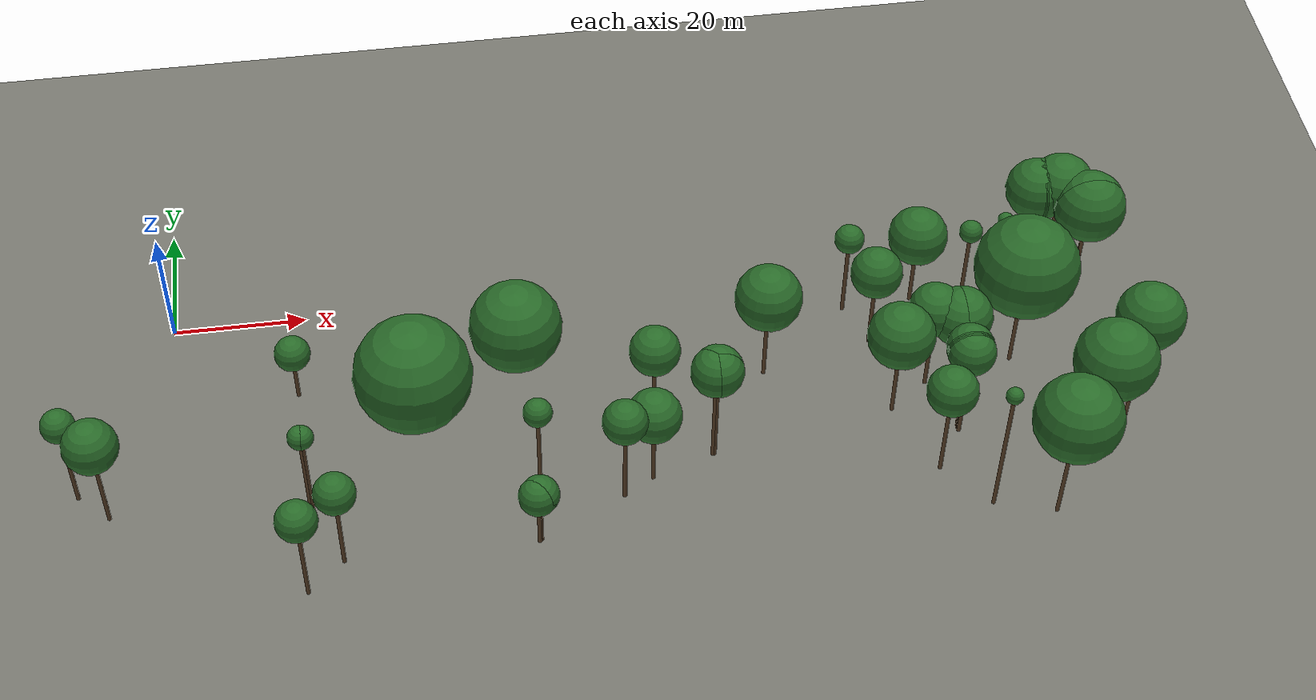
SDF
<sdf version="1.9">
 <world name="uav_arena_bk">
  <model name="ground_plane">
   <static>true</static>
   <link name="link">
    <collision name="collision">
     <geometry><plane><normal>0 0 1</normal><size>1200 1200</size></plane></geometry>
    </collision>
    <visual name="visual">
     <geometry><plane><normal>0 0 1</normal><size>1200 1200</size></plane></geometry>
     <material><ambient>0.35 0.35 0.33 1</ambient><diffuse>0.45 0.45 0.42 1</diffuse></material>
    </visual>
   </link>
  </model>
  <model name="tree_139">
   <static>true</static>
   <pose>133.090 -1.088 0 0 0 0</pose>
   <link name="link">
    <collision name="trunk_collision">
     <pose>0 0 4.930 0 0 0</pose>
     <geometry><cylinder><radius>0.30</radius><length>9.860</length></cylinder></geometry>
    </collision>
    <visual name="trunk_visual">
     <pose>0 0 4.930 0 0 0</pose>
     <geometry><cylinder><radius>0.30</radius><length>9.860</length></cylinder></geometry>
     <material><ambient>0.25 0.18 0.11 1</ambient><diffuse>0.35 0.25 0.15 1</diffuse></material>
    </visual>
    <collision name="canopy_collision">
     <pose>0 0 14.610 0 0 0</pose>
     <geometry><sphere><radius>4.750</radius></sphere></geometry>
    </collision>
    <visual name="canopy_visual">
     <pose>0 0 14.610 0 0 0</pose>
     <geometry><sphere><radius>4.750</radius></sphere></geometry>
     <material><ambient>0.10 0.28 0.10 1</ambient><diffuse>0.16 0.42 0.16 1</diffuse></material>
     <plugin filename="gz-sim-label-system" name="gz::sim::systems::Label"><label>2</label></plugin>
    </visual>
   </link>
  </model>
  <model name="tree_140">
   <static>true</static>
   <pose>133.340 -1.089 0 0 0 0</pose>
   <link name="link">
    <collision name="trunk_collision">
     <pose>0 0 4.915 0 0 0</pose>
     <geometry><cylinder><radius>0.30</radius><length>9.830</length></cylinder></geometry>
    </collision>
    <visual name="trunk_visual">
     <pose>0 0 4.915 0 0 0</pose>
     <geometry><cylinder><radius>0.30</radius><length>9.830</length></cylinder></geometry>
     <material><ambient>0.25 0.18 0.11 1</ambient><diffuse>0.35 0.25 0.15 1</diffuse></material>
    </visual>
    <collision name="canopy_collision">
     <pose>0 0 14.580 0 0 0</pose>
     <geometry><sphere><radius>4.750</radius></sphere></geometry>
    </collision>
    <visual name="canopy_visual">
     <pose>0 0 14.580 0 0 0</pose>
     <geometry><sphere><radius>4.750</radius></sphere></geometry>
     <material><ambient>0.10 0.28 0.10 1</ambient><diffuse>0.16 0.42 0.16 1</diffuse></material>
     <plugin filename="gz-sim-label-system" name="gz::sim::systems::Label"><label>2</label></plugin>
    </visual>
   </link>
  </model>
  <model name="tree_141">
   <static>true</static>
   <pose>133.590 -1.091 0 0 0 0</pose>
   <link name="link">
    <collision name="trunk_collision">
     <pose>0 0 4.905 0 0 0</pose>
     <geometry><cylinder><radius>0.30</radius><length>9.810</length></cylinder></geometry>
    </collision>
    <visual name="trunk_visual">
     <pose>0 0 4.905 0 0 0</pose>
     <geometry><cylinder><radius>0.30</radius><length>9.810</length></cylinder></geometry>
     <material><ambient>0.25 0.18 0.11 1</ambient><diffuse>0.35 0.25 0.15 1</diffuse></material>
    </visual>
    <collision name="canopy_collision">
     <pose>0 0 14.560 0 0 0</pose>
     <geometry><sphere><radius>4.750</radius></sphere></geometry>
    </collision>
    <visual name="canopy_visual">
     <pose>0 0 14.560 0 0 0</pose>
     <geometry><sphere><radius>4.750</radius></sphere></geometry>
     <material><ambient>0.10 0.28 0.10 1</ambient><diffuse>0.16 0.42 0.16 1</diffuse></material>
     <plugin filename="gz-sim-label-system" name="gz::sim::systems::Label"><label>2</label></plugin>
    </visual>
   </link>
  </model>
  <model name="tree_142">
   <static>true</static>
   <pose>133.840 -1.092 0 0 0 0</pose>
   <link name="link">
    <collision name="trunk_collision">
     <pose>0 0 4.900 0 0 0</pose>
     <geometry><cylinder><radius>0.30</radius><length>9.800</length></cylinder></geometry>
    </collision>
    <visual name="trunk_visual">
     <pose>0 0 4.900 0 0 0</pose>
     <geometry><cylinder><radius>0.30</radius><length>9.800</length></cylinder></geometry>
     <material><ambient>0.25 0.18 0.11 1</ambient><diffuse>0.35 0.25 0.15 1</diffuse></material>
    </visual>
    <collision name="canopy_collision">
     <pose>0 0 14.550 0 0 0</pose>
     <geometry><sphere><radius>4.750</radius></sphere></geometry>
    </collision>
    <visual name="canopy_visual">
     <pose>0 0 14.550 0 0 0</pose>
     <geometry><sphere><radius>4.750</radius></sphere></geometry>
     <material><ambient>0.10 0.28 0.10 1</ambient><diffuse>0.16 0.42 0.16 1</diffuse></material>
     <plugin filename="gz-sim-label-system" name="gz::sim::systems::Label"><label>2</label></plugin>
    </visual>
   </link>
  </model>
  <model name="tree_144">
   <static>true</static>
   <pose>136.839 -1.358 0 0 0 0</pose>
   <link name="link">
    <collision name="trunk_collision">
     <pose>0 0 5.085 0 0 0</pose>
     <geometry><cylinder><radius>0.30</radius><length>10.170</length></cylinder></geometry>
    </collision>
    <visual name="trunk_visual">
     <pose>0 0 5.085 0 0 0</pose>
     <geometry><cylinder><radius>0.30</radius><length>10.170</length></cylinder></geometry>
     <material><ambient>0.25 0.18 0.11 1</ambient><diffuse>0.35 0.25 0.15 1</diffuse></material>
    </visual>
    <collision name="canopy_collision">
     <pose>0 0 15.170 0 0 0</pose>
     <geometry><sphere><radius>5.000</radius></sphere></geometry>
    </collision>
    <visual name="canopy_visual">
     <pose>0 0 15.170 0 0 0</pose>
     <geometry><sphere><radius>5.000</radius></sphere></geometry>
     <material><ambient>0.10 0.28 0.10 1</ambient><diffuse>0.16 0.42 0.16 1</diffuse></material>
     <plugin filename="gz-sim-label-system" name="gz::sim::systems::Label"><label>2</label></plugin>
    </visual>
   </link>
  </model>
  <model name="tree_146">
   <static>true</static>
   <pose>140.064 -5.876 0 0 0 0</pose>
   <link name="link">
    <collision name="trunk_collision">
     <pose>0 0 4.670 0 0 0</pose>
     <geometry><cylinder><radius>0.30</radius><length>9.340</length></cylinder></geometry>
    </collision>
    <visual name="trunk_visual">
     <pose>0 0 4.670 0 0 0</pose>
     <geometry><cylinder><radius>0.30</radius><length>9.340</length></cylinder></geometry>
     <material><ambient>0.25 0.18 0.11 1</ambient><diffuse>0.35 0.25 0.15 1</diffuse></material>
    </visual>
    <collision name="canopy_collision">
     <pose>0 0 14.840 0 0 0</pose>
     <geometry><sphere><radius>5.500</radius></sphere></geometry>
    </collision>
    <visual name="canopy_visual">
     <pose>0 0 14.840 0 0 0</pose>
     <geometry><sphere><radius>5.500</radius></sphere></geometry>
     <material><ambient>0.10 0.28 0.10 1</ambient><diffuse>0.16 0.42 0.16 1</diffuse></material>
     <plugin filename="gz-sim-label-system" name="gz::sim::systems::Label"><label>2</label></plugin>
    </visual>
   </link>
  </model>
  <model name="tree_147">
   <static>true</static>
   <pose>140.063 -6.126 0 0 0 0</pose>
   <link name="link">
    <collision name="trunk_collision">
     <pose>0 0 4.670 0 0 0</pose>
     <geometry><cylinder><radius>0.30</radius><length>9.340</length></cylinder></geometry>
    </collision>
    <visual name="trunk_visual">
     <pose>0 0 4.670 0 0 0</pose>
     <geometry><cylinder><radius>0.30</radius><length>9.340</length></cylinder></geometry>
     <material><ambient>0.25 0.18 0.11 1</ambient><diffuse>0.35 0.25 0.15 1</diffuse></material>
    </visual>
    <collision name="canopy_collision">
     <pose>0 0 14.840 0 0 0</pose>
     <geometry><sphere><radius>5.500</radius></sphere></geometry>
    </collision>
    <visual name="canopy_visual">
     <pose>0 0 14.840 0 0 0</pose>
     <geometry><sphere><radius>5.500</radius></sphere></geometry>
     <material><ambient>0.10 0.28 0.10 1</ambient><diffuse>0.16 0.42 0.16 1</diffuse></material>
     <plugin filename="gz-sim-label-system" name="gz::sim::systems::Label"><label>2</label></plugin>
    </visual>
   </link>
  </model>
  <model name="tree_148">
   <static>true</static>
   <pose>113.053 -7.979 0 0 0 0</pose>
   <link name="link">
    <collision name="trunk_collision">
     <pose>0 0 4.770 0 0 0</pose>
     <geometry><cylinder><radius>0.30</radius><length>9.540</length></cylinder></geometry>
    </collision>
    <visual name="trunk_visual">
     <pose>0 0 4.770 0 0 0</pose>
     <geometry><cylinder><radius>0.30</radius><length>9.540</length></cylinder></geometry>
     <material><ambient>0.25 0.18 0.11 1</ambient><diffuse>0.35 0.25 0.15 1</diffuse></material>
    </visual>
    <collision name="canopy_collision">
     <pose>0 0 14.050 0 0 0</pose>
     <geometry><sphere><radius>4.510</radius></sphere></geometry>
    </collision>
    <visual name="canopy_visual">
     <pose>0 0 14.050 0 0 0</pose>
     <geometry><sphere><radius>4.510</radius></sphere></geometry>
     <material><ambient>0.10 0.28 0.10 1</ambient><diffuse>0.16 0.42 0.16 1</diffuse></material>
     <plugin filename="gz-sim-label-system" name="gz::sim::systems::Label"><label>2</label></plugin>
    </visual>
   </link>
  </model>
  <model name="tree_149">
   <static>true</static>
   <pose>102.299 -8.671 0 0 0 0</pose>
   <link name="link">
    <collision name="trunk_collision">
     <pose>0 0 6.655 0 0 0</pose>
     <geometry><cylinder><radius>0.30</radius><length>13.310</length></cylinder></geometry>
    </collision>
    <visual name="trunk_visual">
     <pose>0 0 6.655 0 0 0</pose>
     <geometry><cylinder><radius>0.30</radius><length>13.310</length></cylinder></geometry>
     <material><ambient>0.25 0.18 0.11 1</ambient><diffuse>0.35 0.25 0.15 1</diffuse></material>
    </visual>
    <collision name="canopy_collision">
     <pose>0 0 15.560 0 0 0</pose>
     <geometry><sphere><radius>2.250</radius></sphere></geometry>
    </collision>
    <visual name="canopy_visual">
     <pose>0 0 15.560 0 0 0</pose>
     <geometry><sphere><radius>2.250</radius></sphere></geometry>
     <material><ambient>0.10 0.28 0.10 1</ambient><diffuse>0.16 0.42 0.16 1</diffuse></material>
     <plugin filename="gz-sim-label-system" name="gz::sim::systems::Label"><label>2</label></plugin>
    </visual>
   </link>
  </model>
  <model name="tree_150">
   <static>true</static>
   <pose>126.047 -9.050 0 0 0 0</pose>
   <link name="link">
    <collision name="trunk_collision">
     <pose>0 0 7.720 0 0 0</pose>
     <geometry><cylinder><radius>0.30</radius><length>15.440</length></cylinder></geometry>
    </collision>
    <visual name="trunk_visual">
     <pose>0 0 7.720 0 0 0</pose>
     <geometry><cylinder><radius>0.30</radius><length>15.440</length></cylinder></geometry>
     <material><ambient>0.25 0.18 0.11 1</ambient><diffuse>0.35 0.25 0.15 1</diffuse></material>
    </visual>
    <collision name="canopy_collision">
     <pose>0 0 16.690 0 0 0</pose>
     <geometry><sphere><radius>1.250</radius></sphere></geometry>
    </collision>
    <visual name="canopy_visual">
     <pose>0 0 16.690 0 0 0</pose>
     <geometry><sphere><radius>1.250</radius></sphere></geometry>
     <material><ambient>0.10 0.28 0.10 1</ambient><diffuse>0.16 0.42 0.16 1</diffuse></material>
     <plugin filename="gz-sim-label-system" name="gz::sim::systems::Label"><label>2</label></plugin>
    </visual>
   </link>
  </model>
  <model name="tree_155">
   <static>true</static>
   <pose>120.542 -10.020 0 0 0 0</pose>
   <link name="link">
    <collision name="trunk_collision">
     <pose>0 0 7.150 0 0 0</pose>
     <geometry><cylinder><radius>0.30</radius><length>14.300</length></cylinder></geometry>
    </collision>
    <visual name="trunk_visual">
     <pose>0 0 7.150 0 0 0</pose>
     <geometry><cylinder><radius>0.30</radius><length>14.300</length></cylinder></geometry>
     <material><ambient>0.25 0.18 0.11 1</ambient><diffuse>0.35 0.25 0.15 1</diffuse></material>
    </visual>
    <collision name="canopy_collision">
     <pose>0 0 16.050 0 0 0</pose>
     <geometry><sphere><radius>1.750</radius></sphere></geometry>
    </collision>
    <visual name="canopy_visual">
     <pose>0 0 16.050 0 0 0</pose>
     <geometry><sphere><radius>1.750</radius></sphere></geometry>
     <material><ambient>0.10 0.28 0.10 1</ambient><diffuse>0.16 0.42 0.16 1</diffuse></material>
     <plugin filename="gz-sim-label-system" name="gz::sim::systems::Label"><label>2</label></plugin>
    </visual>
   </link>
  </model>
  <model name="tree_159">
   <static>true</static>
   <pose>51.269 -14.145 0 0 0 0</pose>
   <link name="link">
    <collision name="trunk_collision">
     <pose>0 0 1.340 0 0 0</pose>
     <geometry><cylinder><radius>0.30</radius><length>2.680</length></cylinder></geometry>
    </collision>
    <visual name="trunk_visual">
     <pose>0 0 1.340 0 0 0</pose>
     <geometry><cylinder><radius>0.30</radius><length>2.680</length></cylinder></geometry>
     <material><ambient>0.25 0.18 0.11 1</ambient><diffuse>0.35 0.25 0.15 1</diffuse></material>
    </visual>
    <collision name="canopy_collision">
     <pose>0 0 9.680 0 0 0</pose>
     <geometry><sphere><radius>7.000</radius></sphere></geometry>
    </collision>
    <visual name="canopy_visual">
     <pose>0 0 9.680 0 0 0</pose>
     <geometry><sphere><radius>7.000</radius></sphere></geometry>
     <material><ambient>0.10 0.28 0.10 1</ambient><diffuse>0.16 0.42 0.16 1</diffuse></material>
     <plugin filename="gz-sim-label-system" name="gz::sim::systems::Label"><label>2</label></plugin>
    </visual>
   </link>
  </model>
  <model name="tree_160">
   <static>true</static>
   <pose>18.264 -14.966 0 0 0 0</pose>
   <link name="link">
    <collision name="trunk_collision">
     <pose>0 0 3.405 0 0 0</pose>
     <geometry><cylinder><radius>0.30</radius><length>6.810</length></cylinder></geometry>
    </collision>
    <visual name="trunk_visual">
     <pose>0 0 3.405 0 0 0</pose>
     <geometry><cylinder><radius>0.30</radius><length>6.810</length></cylinder></geometry>
     <material><ambient>0.25 0.18 0.11 1</ambient><diffuse>0.35 0.25 0.15 1</diffuse></material>
    </visual>
    <collision name="canopy_collision">
     <pose>0 0 9.500 0 0 0</pose>
     <geometry><sphere><radius>2.690</radius></sphere></geometry>
    </collision>
    <visual name="canopy_visual">
     <pose>0 0 9.500 0 0 0</pose>
     <geometry><sphere><radius>2.690</radius></sphere></geometry>
     <material><ambient>0.10 0.28 0.10 1</ambient><diffuse>0.16 0.42 0.16 1</diffuse></material>
     <plugin filename="gz-sim-label-system" name="gz::sim::systems::Label"><label>2</label></plugin>
    </visual>
   </link>
  </model>
  <model name="tree_161">
   <static>true</static>
   <pose>105.011 -15.686 0 0 0 0</pose>
   <link name="link">
    <collision name="trunk_collision">
     <pose>0 0 5.695 0 0 0</pose>
     <geometry><cylinder><radius>0.30</radius><length>11.390</length></cylinder></geometry>
    </collision>
    <visual name="trunk_visual">
     <pose>0 0 5.695 0 0 0</pose>
     <geometry><cylinder><radius>0.30</radius><length>11.390</length></cylinder></geometry>
     <material><ambient>0.25 0.18 0.11 1</ambient><diffuse>0.35 0.25 0.15 1</diffuse></material>
    </visual>
    <collision name="canopy_collision">
     <pose>0 0 15.300 0 0 0</pose>
     <geometry><sphere><radius>3.910</radius></sphere></geometry>
    </collision>
    <visual name="canopy_visual">
     <pose>0 0 15.300 0 0 0</pose>
     <geometry><sphere><radius>3.910</radius></sphere></geometry>
     <material><ambient>0.10 0.28 0.10 1</ambient><diffuse>0.16 0.42 0.16 1</diffuse></material>
     <plugin filename="gz-sim-label-system" name="gz::sim::systems::Label"><label>2</label></plugin>
    </visual>
   </link>
  </model>
  <model name="tree_171">
   <static>true</static>
   <pose>87.988 -19.844 0 0 0 0</pose>
   <link name="link">
    <collision name="trunk_collision">
     <pose>0 0 5.880 0 0 0</pose>
     <geometry><cylinder><radius>0.30</radius><length>11.760</length></cylinder></geometry>
    </collision>
    <visual name="trunk_visual">
     <pose>0 0 5.880 0 0 0</pose>
     <geometry><cylinder><radius>0.30</radius><length>11.760</length></cylinder></geometry>
     <material><ambient>0.25 0.18 0.11 1</ambient><diffuse>0.35 0.25 0.15 1</diffuse></material>
    </visual>
    <collision name="canopy_collision">
     <pose>0 0 16.780 0 0 0</pose>
     <geometry><sphere><radius>5.020</radius></sphere></geometry>
    </collision>
    <visual name="canopy_visual">
     <pose>0 0 16.780 0 0 0</pose>
     <geometry><sphere><radius>5.020</radius></sphere></geometry>
     <material><ambient>0.10 0.28 0.10 1</ambient><diffuse>0.16 0.42 0.16 1</diffuse></material>
     <plugin filename="gz-sim-label-system" name="gz::sim::systems::Label"><label>2</label></plugin>
    </visual>
   </link>
  </model>
  <model name="tree_172">
   <static>true</static>
   <pose>35.479 -21.559 0 0 0 0</pose>
   <link name="link">
    <collision name="trunk_collision">
     <pose>0 0 0.500 0 0 0</pose>
     <geometry><cylinder><radius>0.30</radius><length>1.000</length></cylinder></geometry>
    </collision>
    <visual name="trunk_visual">
     <pose>0 0 0.500 0 0 0</pose>
     <geometry><cylinder><radius>0.30</radius><length>1.000</length></cylinder></geometry>
     <material><ambient>0.25 0.18 0.11 1</ambient><diffuse>0.35 0.25 0.15 1</diffuse></material>
    </visual>
    <collision name="canopy_collision">
     <pose>0 0 9.860 0 0 0</pose>
     <geometry><sphere><radius>8.860</radius></sphere></geometry>
    </collision>
    <visual name="canopy_visual">
     <pose>0 0 9.860 0 0 0</pose>
     <geometry><sphere><radius>8.860</radius></sphere></geometry>
     <material><ambient>0.10 0.28 0.10 1</ambient><diffuse>0.16 0.42 0.16 1</diffuse></material>
     <plugin filename="gz-sim-label-system" name="gz::sim::systems::Label"><label>2</label></plugin>
    </visual>
   </link>
  </model>
  <model name="tree_173">
   <static>true</static>
   <pose>125.477 -22.047 0 0 0 0</pose>
   <link name="link">
    <collision name="trunk_collision">
     <pose>0 0 6.335 0 0 0</pose>
     <geometry><cylinder><radius>0.30</radius><length>12.670</length></cylinder></geometry>
    </collision>
    <visual name="trunk_visual">
     <pose>0 0 6.335 0 0 0</pose>
     <geometry><cylinder><radius>0.30</radius><length>12.670</length></cylinder></geometry>
     <material><ambient>0.25 0.18 0.11 1</ambient><diffuse>0.35 0.25 0.15 1</diffuse></material>
    </visual>
    <collision name="canopy_collision">
     <pose>0 0 20.430 0 0 0</pose>
     <geometry><sphere><radius>7.760</radius></sphere></geometry>
    </collision>
    <visual name="canopy_visual">
     <pose>0 0 20.430 0 0 0</pose>
     <geometry><sphere><radius>7.760</radius></sphere></geometry>
     <material><ambient>0.10 0.28 0.10 1</ambient><diffuse>0.16 0.42 0.16 1</diffuse></material>
     <plugin filename="gz-sim-label-system" name="gz::sim::systems::Label"><label>2</label></plugin>
    </visual>
   </link>
  </model>
  <model name="tree_174">
   <static>true</static>
   <pose>111.711 -24.972 0 0 0 0</pose>
   <link name="link">
    <collision name="trunk_collision">
     <pose>0 0 6.185 0 0 0</pose>
     <geometry><cylinder><radius>0.30</radius><length>12.370</length></cylinder></geometry>
    </collision>
    <visual name="trunk_visual">
     <pose>0 0 6.185 0 0 0</pose>
     <geometry><cylinder><radius>0.30</radius><length>12.370</length></cylinder></geometry>
     <material><ambient>0.25 0.18 0.11 1</ambient><diffuse>0.35 0.25 0.15 1</diffuse></material>
    </visual>
    <collision name="canopy_collision">
     <pose>0 0 16.400 0 0 0</pose>
     <geometry><sphere><radius>4.030</radius></sphere></geometry>
    </collision>
    <visual name="canopy_visual">
     <pose>0 0 16.400 0 0 0</pose>
     <geometry><sphere><radius>4.030</radius></sphere></geometry>
     <material><ambient>0.10 0.28 0.10 1</ambient><diffuse>0.16 0.42 0.16 1</diffuse></material>
     <plugin filename="gz-sim-label-system" name="gz::sim::systems::Label"><label>2</label></plugin>
    </visual>
   </link>
  </model>
  <model name="tree_177">
   <static>true</static>
   <pose>115.204 -26.241 0 0 0 0</pose>
   <link name="link">
    <collision name="trunk_collision">
     <pose>0 0 5.630 0 0 0</pose>
     <geometry><cylinder><radius>0.30</radius><length>11.260</length></cylinder></geometry>
    </collision>
    <visual name="trunk_visual">
     <pose>0 0 5.630 0 0 0</pose>
     <geometry><cylinder><radius>0.30</radius><length>11.260</length></cylinder></geometry>
     <material><ambient>0.25 0.18 0.11 1</ambient><diffuse>0.35 0.25 0.15 1</diffuse></material>
    </visual>
    <collision name="canopy_collision">
     <pose>0 0 15.760 0 0 0</pose>
     <geometry><sphere><radius>4.500</radius></sphere></geometry>
    </collision>
    <visual name="canopy_visual">
     <pose>0 0 15.760 0 0 0</pose>
     <geometry><sphere><radius>4.500</radius></sphere></geometry>
     <material><ambient>0.10 0.28 0.10 1</ambient><diffuse>0.16 0.42 0.16 1</diffuse></material>
     <plugin filename="gz-sim-label-system" name="gz::sim::systems::Label"><label>2</label></plugin>
    </visual>
   </link>
  </model>
  <model name="tree_178">
   <static>true</static>
   <pose>115.454 -26.242 0 0 0 0</pose>
   <link name="link">
    <collision name="trunk_collision">
     <pose>0 0 5.630 0 0 0</pose>
     <geometry><cylinder><radius>0.30</radius><length>11.260</length></cylinder></geometry>
    </collision>
    <visual name="trunk_visual">
     <pose>0 0 5.630 0 0 0</pose>
     <geometry><cylinder><radius>0.30</radius><length>11.260</length></cylinder></geometry>
     <material><ambient>0.25 0.18 0.11 1</ambient><diffuse>0.35 0.25 0.15 1</diffuse></material>
    </visual>
    <collision name="canopy_collision">
     <pose>0 0 15.760 0 0 0</pose>
     <geometry><sphere><radius>4.500</radius></sphere></geometry>
    </collision>
    <visual name="canopy_visual">
     <pose>0 0 15.760 0 0 0</pose>
     <geometry><sphere><radius>4.500</radius></sphere></geometry>
     <material><ambient>0.10 0.28 0.10 1</ambient><diffuse>0.16 0.42 0.16 1</diffuse></material>
     <plugin filename="gz-sim-label-system" name="gz::sim::systems::Label"><label>2</label></plugin>
    </visual>
   </link>
  </model>
  <model name="tree_179">
   <static>true</static>
   <pose>70.200 -26.997 0 0 0 0</pose>
   <link name="link">
    <collision name="trunk_collision">
     <pose>0 0 6.075 0 0 0</pose>
     <geometry><cylinder><radius>0.30</radius><length>12.150</length></cylinder></geometry>
    </collision>
    <visual name="trunk_visual">
     <pose>0 0 6.075 0 0 0</pose>
     <geometry><cylinder><radius>0.30</radius><length>12.150</length></cylinder></geometry>
     <material><ambient>0.25 0.18 0.11 1</ambient><diffuse>0.35 0.25 0.15 1</diffuse></material>
    </visual>
    <collision name="canopy_collision">
     <pose>0 0 15.900 0 0 0</pose>
     <geometry><sphere><radius>3.750</radius></sphere></geometry>
    </collision>
    <visual name="canopy_visual">
     <pose>0 0 15.900 0 0 0</pose>
     <geometry><sphere><radius>3.750</radius></sphere></geometry>
     <material><ambient>0.10 0.28 0.10 1</ambient><diffuse>0.16 0.42 0.16 1</diffuse></material>
     <plugin filename="gz-sim-label-system" name="gz::sim::systems::Label"><label>2</label></plugin>
    </visual>
   </link>
  </model>
  <model name="tree_183">
   <static>true</static>
   <pose>105.687 -29.440 0 0 0 0</pose>
   <link name="link">
    <collision name="trunk_collision">
     <pose>0 0 5.765 0 0 0</pose>
     <geometry><cylinder><radius>0.30</radius><length>11.530</length></cylinder></geometry>
    </collision>
    <visual name="trunk_visual">
     <pose>0 0 5.765 0 0 0</pose>
     <geometry><cylinder><radius>0.30</radius><length>11.530</length></cylinder></geometry>
     <material><ambient>0.25 0.18 0.11 1</ambient><diffuse>0.35 0.25 0.15 1</diffuse></material>
    </visual>
    <collision name="canopy_collision">
     <pose>0 0 16.530 0 0 0</pose>
     <geometry><sphere><radius>5.000</radius></sphere></geometry>
    </collision>
    <visual name="canopy_visual">
     <pose>0 0 16.530 0 0 0</pose>
     <geometry><sphere><radius>5.000</radius></sphere></geometry>
     <material><ambient>0.10 0.28 0.10 1</ambient><diffuse>0.16 0.42 0.16 1</diffuse></material>
     <plugin filename="gz-sim-label-system" name="gz::sim::systems::Label"><label>2</label></plugin>
    </visual>
   </link>
  </model>
  <model name="tree_188">
   <static>true</static>
   <pose>-14.069 -30.291 0 0 0 0</pose>
   <link name="link">
    <collision name="trunk_collision">
     <pose>0 0 7.040 0 0 0</pose>
     <geometry><cylinder><radius>0.30</radius><length>14.080</length></cylinder></geometry>
    </collision>
    <visual name="trunk_visual">
     <pose>0 0 7.040 0 0 0</pose>
     <geometry><cylinder><radius>0.30</radius><length>14.080</length></cylinder></geometry>
     <material><ambient>0.25 0.18 0.11 1</ambient><diffuse>0.35 0.25 0.15 1</diffuse></material>
    </visual>
    <collision name="canopy_collision">
     <pose>0 0 16.580 0 0 0</pose>
     <geometry><sphere><radius>2.500</radius></sphere></geometry>
    </collision>
    <visual name="canopy_visual">
     <pose>0 0 16.580 0 0 0</pose>
     <geometry><sphere><radius>2.500</radius></sphere></geometry>
     <material><ambient>0.10 0.28 0.10 1</ambient><diffuse>0.16 0.42 0.16 1</diffuse></material>
     <plugin filename="gz-sim-label-system" name="gz::sim::systems::Label"><label>2</label></plugin>
    </visual>
   </link>
  </model>
  <model name="tree_191">
   <static>true</static>
   <pose>114.663 -33.738 0 0 0 0</pose>
   <link name="link">
    <collision name="trunk_collision">
     <pose>0 0 7.060 0 0 0</pose>
     <geometry><cylinder><radius>0.30</radius><length>14.120</length></cylinder></geometry>
    </collision>
    <visual name="trunk_visual">
     <pose>0 0 7.060 0 0 0</pose>
     <geometry><cylinder><radius>0.30</radius><length>14.120</length></cylinder></geometry>
     <material><ambient>0.25 0.18 0.11 1</ambient><diffuse>0.35 0.25 0.15 1</diffuse></material>
    </visual>
    <collision name="canopy_collision">
     <pose>0 0 17.620 0 0 0</pose>
     <geometry><sphere><radius>3.500</radius></sphere></geometry>
    </collision>
    <visual name="canopy_visual">
     <pose>0 0 17.620 0 0 0</pose>
     <geometry><sphere><radius>3.500</radius></sphere></geometry>
     <material><ambient>0.10 0.28 0.10 1</ambient><diffuse>0.16 0.42 0.16 1</diffuse></material>
     <plugin filename="gz-sim-label-system" name="gz::sim::systems::Label"><label>2</label></plugin>
    </visual>
   </link>
  </model>
  <model name="tree_193">
   <static>true</static>
   <pose>114.662 -33.988 0 0 0 0</pose>
   <link name="link">
    <collision name="trunk_collision">
     <pose>0 0 7.060 0 0 0</pose>
     <geometry><cylinder><radius>0.30</radius><length>14.120</length></cylinder></geometry>
    </collision>
    <visual name="trunk_visual">
     <pose>0 0 7.060 0 0 0</pose>
     <geometry><cylinder><radius>0.30</radius><length>14.120</length></cylinder></geometry>
     <material><ambient>0.25 0.18 0.11 1</ambient><diffuse>0.35 0.25 0.15 1</diffuse></material>
    </visual>
    <collision name="canopy_collision">
     <pose>0 0 17.620 0 0 0</pose>
     <geometry><sphere><radius>3.500</radius></sphere></geometry>
    </collision>
    <visual name="canopy_visual">
     <pose>0 0 17.620 0 0 0</pose>
     <geometry><sphere><radius>3.500</radius></sphere></geometry>
     <material><ambient>0.10 0.28 0.10 1</ambient><diffuse>0.16 0.42 0.16 1</diffuse></material>
     <plugin filename="gz-sim-label-system" name="gz::sim::systems::Label"><label>2</label></plugin>
    </visual>
   </link>
  </model>
  <model name="tree_194">
   <static>true</static>
   <pose>78.161 -34.040 0 0 0 0</pose>
   <link name="link">
    <collision name="trunk_collision">
     <pose>0 0 7.390 0 0 0</pose>
     <geometry><cylinder><radius>0.30</radius><length>14.780</length></cylinder></geometry>
    </collision>
    <visual name="trunk_visual">
     <pose>0 0 7.390 0 0 0</pose>
     <geometry><cylinder><radius>0.30</radius><length>14.780</length></cylinder></geometry>
     <material><ambient>0.25 0.18 0.11 1</ambient><diffuse>0.35 0.25 0.15 1</diffuse></material>
    </visual>
    <collision name="canopy_collision">
     <pose>0 0 18.530 0 0 0</pose>
     <geometry><sphere><radius>3.750</radius></sphere></geometry>
    </collision>
    <visual name="canopy_visual">
     <pose>0 0 18.530 0 0 0</pose>
     <geometry><sphere><radius>3.750</radius></sphere></geometry>
     <material><ambient>0.10 0.28 0.10 1</ambient><diffuse>0.16 0.42 0.16 1</diffuse></material>
     <plugin filename="gz-sim-label-system" name="gz::sim::systems::Label"><label>2</label></plugin>
    </visual>
   </link>
  </model>
  <model name="tree_195">
   <static>true</static>
   <pose>114.661 -34.238 0 0 0 0</pose>
   <link name="link">
    <collision name="trunk_collision">
     <pose>0 0 7.060 0 0 0</pose>
     <geometry><cylinder><radius>0.30</radius><length>14.120</length></cylinder></geometry>
    </collision>
    <visual name="trunk_visual">
     <pose>0 0 7.060 0 0 0</pose>
     <geometry><cylinder><radius>0.30</radius><length>14.120</length></cylinder></geometry>
     <material><ambient>0.25 0.18 0.11 1</ambient><diffuse>0.35 0.25 0.15 1</diffuse></material>
    </visual>
    <collision name="canopy_collision">
     <pose>0 0 17.620 0 0 0</pose>
     <geometry><sphere><radius>3.500</radius></sphere></geometry>
    </collision>
    <visual name="canopy_visual">
     <pose>0 0 17.620 0 0 0</pose>
     <geometry><sphere><radius>3.500</radius></sphere></geometry>
     <material><ambient>0.10 0.28 0.10 1</ambient><diffuse>0.16 0.42 0.16 1</diffuse></material>
     <plugin filename="gz-sim-label-system" name="gz::sim::systems::Label"><label>2</label></plugin>
    </visual>
   </link>
  </model>
  <model name="tree_196">
   <static>true</static>
   <pose>77.910 -34.289 0 0 0 0</pose>
   <link name="link">
    <collision name="trunk_collision">
     <pose>0 0 7.390 0 0 0</pose>
     <geometry><cylinder><radius>0.30</radius><length>14.780</length></cylinder></geometry>
    </collision>
    <visual name="trunk_visual">
     <pose>0 0 7.390 0 0 0</pose>
     <geometry><cylinder><radius>0.30</radius><length>14.780</length></cylinder></geometry>
     <material><ambient>0.25 0.18 0.11 1</ambient><diffuse>0.35 0.25 0.15 1</diffuse></material>
    </visual>
    <collision name="canopy_collision">
     <pose>0 0 18.530 0 0 0</pose>
     <geometry><sphere><radius>3.750</radius></sphere></geometry>
    </collision>
    <visual name="canopy_visual">
     <pose>0 0 18.530 0 0 0</pose>
     <geometry><sphere><radius>3.750</radius></sphere></geometry>
     <material><ambient>0.10 0.28 0.10 1</ambient><diffuse>0.16 0.42 0.16 1</diffuse></material>
     <plugin filename="gz-sim-label-system" name="gz::sim::systems::Label"><label>2</label></plugin>
    </visual>
   </link>
  </model>
  <model name="tree_197">
   <static>true</static>
   <pose>78.160 -34.290 0 0 0 0</pose>
   <link name="link">
    <collision name="trunk_collision">
     <pose>0 0 7.390 0 0 0</pose>
     <geometry><cylinder><radius>0.30</radius><length>14.780</length></cylinder></geometry>
    </collision>
    <visual name="trunk_visual">
     <pose>0 0 7.390 0 0 0</pose>
     <geometry><cylinder><radius>0.30</radius><length>14.780</length></cylinder></geometry>
     <material><ambient>0.25 0.18 0.11 1</ambient><diffuse>0.35 0.25 0.15 1</diffuse></material>
    </visual>
    <collision name="canopy_collision">
     <pose>0 0 18.530 0 0 0</pose>
     <geometry><sphere><radius>3.750</radius></sphere></geometry>
    </collision>
    <visual name="canopy_visual">
     <pose>0 0 18.530 0 0 0</pose>
     <geometry><sphere><radius>3.750</radius></sphere></geometry>
     <material><ambient>0.10 0.28 0.10 1</ambient><diffuse>0.16 0.42 0.16 1</diffuse></material>
     <plugin filename="gz-sim-label-system" name="gz::sim::systems::Label"><label>2</label></plugin>
    </visual>
   </link>
  </model>
  <model name="tree_198">
   <static>true</static>
   <pose>114.659 -34.488 0 0 0 0</pose>
   <link name="link">
    <collision name="trunk_collision">
     <pose>0 0 7.060 0 0 0</pose>
     <geometry><cylinder><radius>0.30</radius><length>14.120</length></cylinder></geometry>
    </collision>
    <visual name="trunk_visual">
     <pose>0 0 7.060 0 0 0</pose>
     <geometry><cylinder><radius>0.30</radius><length>14.120</length></cylinder></geometry>
     <material><ambient>0.25 0.18 0.11 1</ambient><diffuse>0.35 0.25 0.15 1</diffuse></material>
    </visual>
    <collision name="canopy_collision">
     <pose>0 0 17.620 0 0 0</pose>
     <geometry><sphere><radius>3.500</radius></sphere></geometry>
    </collision>
    <visual name="canopy_visual">
     <pose>0 0 17.620 0 0 0</pose>
     <geometry><sphere><radius>3.500</radius></sphere></geometry>
     <material><ambient>0.10 0.28 0.10 1</ambient><diffuse>0.16 0.42 0.16 1</diffuse></material>
     <plugin filename="gz-sim-label-system" name="gz::sim::systems::Label"><label>2</label></plugin>
    </visual>
   </link>
  </model>
  <model name="tree_199">
   <static>true</static>
   <pose>114.658 -34.738 0 0 0 0</pose>
   <link name="link">
    <collision name="trunk_collision">
     <pose>0 0 7.060 0 0 0</pose>
     <geometry><cylinder><radius>0.30</radius><length>14.120</length></cylinder></geometry>
    </collision>
    <visual name="trunk_visual">
     <pose>0 0 7.060 0 0 0</pose>
     <geometry><cylinder><radius>0.30</radius><length>14.120</length></cylinder></geometry>
     <material><ambient>0.25 0.18 0.11 1</ambient><diffuse>0.35 0.25 0.15 1</diffuse></material>
    </visual>
    <collision name="canopy_collision">
     <pose>0 0 17.620 0 0 0</pose>
     <geometry><sphere><radius>3.500</radius></sphere></geometry>
    </collision>
    <visual name="canopy_visual">
     <pose>0 0 17.620 0 0 0</pose>
     <geometry><sphere><radius>3.500</radius></sphere></geometry>
     <material><ambient>0.10 0.28 0.10 1</ambient><diffuse>0.16 0.42 0.16 1</diffuse></material>
     <plugin filename="gz-sim-label-system" name="gz::sim::systems::Label"><label>2</label></plugin>
    </visual>
   </link>
  </model>
  <model name="tree_200">
   <static>true</static>
   <pose>-9.592 -34.565 0 0 0 0</pose>
   <link name="link">
    <collision name="trunk_collision">
     <pose>0 0 6.270 0 0 0</pose>
     <geometry><cylinder><radius>0.30</radius><length>12.540</length></cylinder></geometry>
    </collision>
    <visual name="trunk_visual">
     <pose>0 0 6.270 0 0 0</pose>
     <geometry><cylinder><radius>0.30</radius><length>12.540</length></cylinder></geometry>
     <material><ambient>0.25 0.18 0.11 1</ambient><diffuse>0.35 0.25 0.15 1</diffuse></material>
    </visual>
    <collision name="canopy_collision">
     <pose>0 0 16.570 0 0 0</pose>
     <geometry><sphere><radius>4.030</radius></sphere></geometry>
    </collision>
    <visual name="canopy_visual">
     <pose>0 0 16.570 0 0 0</pose>
     <geometry><sphere><radius>4.030</radius></sphere></geometry>
     <material><ambient>0.10 0.28 0.10 1</ambient><diffuse>0.16 0.42 0.16 1</diffuse></material>
     <plugin filename="gz-sim-label-system" name="gz::sim::systems::Label"><label>2</label></plugin>
    </visual>
   </link>
  </model>
  <model name="tree_201">
   <static>true</static>
   <pose>52.407 -34.901 0 0 0 0</pose>
   <link name="link">
    <collision name="trunk_collision">
     <pose>0 0 6.090 0 0 0</pose>
     <geometry><cylinder><radius>0.30</radius><length>12.180</length></cylinder></geometry>
    </collision>
    <visual name="trunk_visual">
     <pose>0 0 6.090 0 0 0</pose>
     <geometry><cylinder><radius>0.30</radius><length>12.180</length></cylinder></geometry>
     <material><ambient>0.25 0.18 0.11 1</ambient><diffuse>0.35 0.25 0.15 1</diffuse></material>
    </visual>
    <collision name="canopy_collision">
     <pose>0 0 14.330 0 0 0</pose>
     <geometry><sphere><radius>2.150</radius></sphere></geometry>
    </collision>
    <visual name="canopy_visual">
     <pose>0 0 14.330 0 0 0</pose>
     <geometry><sphere><radius>2.150</radius></sphere></geometry>
     <material><ambient>0.10 0.28 0.10 1</ambient><diffuse>0.16 0.42 0.16 1</diffuse></material>
     <plugin filename="gz-sim-label-system" name="gz::sim::systems::Label"><label>2</label></plugin>
    </visual>
   </link>
  </model>
  <model name="tree_202">
   <static>true</static>
   <pose>139.653 -35.624 0 0 0 0</pose>
   <link name="link">
    <collision name="trunk_collision">
     <pose>0 0 8.760 0 0 0</pose>
     <geometry><cylinder><radius>0.30</radius><length>17.520</length></cylinder></geometry>
    </collision>
    <visual name="trunk_visual">
     <pose>0 0 8.760 0 0 0</pose>
     <geometry><cylinder><radius>0.30</radius><length>17.520</length></cylinder></geometry>
     <material><ambient>0.25 0.18 0.11 1</ambient><diffuse>0.35 0.25 0.15 1</diffuse></material>
    </visual>
    <collision name="canopy_collision">
     <pose>0 0 22.540 0 0 0</pose>
     <geometry><sphere><radius>5.020</radius></sphere></geometry>
    </collision>
    <visual name="canopy_visual">
     <pose>0 0 22.540 0 0 0</pose>
     <geometry><sphere><radius>5.020</radius></sphere></geometry>
     <material><ambient>0.10 0.28 0.10 1</ambient><diffuse>0.16 0.42 0.16 1</diffuse></material>
     <plugin filename="gz-sim-label-system" name="gz::sim::systems::Label"><label>2</label></plugin>
    </visual>
   </link>
  </model>
  <model name="tree_204">
   <static>true</static>
   <pose>19.144 -37.221 0 0 0 0</pose>
   <link name="link">
    <collision name="trunk_collision">
     <pose>0 0 7.650 0 0 0</pose>
     <geometry><cylinder><radius>0.30</radius><length>15.300</length></cylinder></geometry>
    </collision>
    <visual name="trunk_visual">
     <pose>0 0 7.650 0 0 0</pose>
     <geometry><cylinder><radius>0.30</radius><length>15.300</length></cylinder></geometry>
     <material><ambient>0.25 0.18 0.11 1</ambient><diffuse>0.35 0.25 0.15 1</diffuse></material>
    </visual>
    <collision name="canopy_collision">
     <pose>0 0 17.070 0 0 0</pose>
     <geometry><sphere><radius>1.770</radius></sphere></geometry>
    </collision>
    <visual name="canopy_visual">
     <pose>0 0 17.070 0 0 0</pose>
     <geometry><sphere><radius>1.770</radius></sphere></geometry>
     <material><ambient>0.10 0.28 0.10 1</ambient><diffuse>0.16 0.42 0.16 1</diffuse></material>
     <plugin filename="gz-sim-label-system" name="gz::sim::systems::Label"><label>2</label></plugin>
    </visual>
   </link>
  </model>
  <model name="tree_205">
   <static>true</static>
   <pose>19.394 -37.222 0 0 0 0</pose>
   <link name="link">
    <collision name="trunk_collision">
     <pose>0 0 7.640 0 0 0</pose>
     <geometry><cylinder><radius>0.30</radius><length>15.280</length></cylinder></geometry>
    </collision>
    <visual name="trunk_visual">
     <pose>0 0 7.640 0 0 0</pose>
     <geometry><cylinder><radius>0.30</radius><length>15.280</length></cylinder></geometry>
     <material><ambient>0.25 0.18 0.11 1</ambient><diffuse>0.35 0.25 0.15 1</diffuse></material>
    </visual>
    <collision name="canopy_collision">
     <pose>0 0 17.050 0 0 0</pose>
     <geometry><sphere><radius>1.770</radius></sphere></geometry>
    </collision>
    <visual name="canopy_visual">
     <pose>0 0 17.050 0 0 0</pose>
     <geometry><sphere><radius>1.770</radius></sphere></geometry>
     <material><ambient>0.10 0.28 0.10 1</ambient><diffuse>0.16 0.42 0.16 1</diffuse></material>
     <plugin filename="gz-sim-label-system" name="gz::sim::systems::Label"><label>2</label></plugin>
    </visual>
   </link>
  </model>
  <model name="tree_206">
   <static>true</static>
   <pose>68.643 -37.489 0 0 0 0</pose>
   <link name="link">
    <collision name="trunk_collision">
     <pose>0 0 5.065 0 0 0</pose>
     <geometry><cylinder><radius>0.30</radius><length>10.130</length></cylinder></geometry>
    </collision>
    <visual name="trunk_visual">
     <pose>0 0 5.065 0 0 0</pose>
     <geometry><cylinder><radius>0.30</radius><length>10.130</length></cylinder></geometry>
     <material><ambient>0.25 0.18 0.11 1</ambient><diffuse>0.35 0.25 0.15 1</diffuse></material>
    </visual>
    <collision name="canopy_collision">
     <pose>0 0 14.160 0 0 0</pose>
     <geometry><sphere><radius>4.030</radius></sphere></geometry>
    </collision>
    <visual name="canopy_visual">
     <pose>0 0 14.160 0 0 0</pose>
     <geometry><sphere><radius>4.030</radius></sphere></geometry>
     <material><ambient>0.10 0.28 0.10 1</ambient><diffuse>0.16 0.42 0.16 1</diffuse></material>
     <plugin filename="gz-sim-label-system" name="gz::sim::systems::Label"><label>2</label></plugin>
    </visual>
   </link>
  </model>
  <model name="tree_208">
   <static>true</static>
   <pose>64.128 -40.214 0 0 0 0</pose>
   <link name="link">
    <collision name="trunk_collision">
     <pose>0 0 6.750 0 0 0</pose>
     <geometry><cylinder><radius>0.30</radius><length>13.500</length></cylinder></geometry>
    </collision>
    <visual name="trunk_visual">
     <pose>0 0 6.750 0 0 0</pose>
     <geometry><cylinder><radius>0.30</radius><length>13.500</length></cylinder></geometry>
     <material><ambient>0.25 0.18 0.11 1</ambient><diffuse>0.35 0.25 0.15 1</diffuse></material>
    </visual>
    <collision name="canopy_collision">
     <pose>0 0 16.790 0 0 0</pose>
     <geometry><sphere><radius>3.290</radius></sphere></geometry>
    </collision>
    <visual name="canopy_visual">
     <pose>0 0 16.790 0 0 0</pose>
     <geometry><sphere><radius>3.290</radius></sphere></geometry>
     <material><ambient>0.10 0.28 0.10 1</ambient><diffuse>0.16 0.42 0.16 1</diffuse></material>
     <plugin filename="gz-sim-label-system" name="gz::sim::systems::Label"><label>2</label></plugin>
    </visual>
   </link>
  </model>
  <model name="tree_209">
   <static>true</static>
   <pose>133.625 -40.841 0 0 0 0</pose>
   <link name="link">
    <collision name="trunk_collision">
     <pose>0 0 6.975 0 0 0</pose>
     <geometry><cylinder><radius>0.30</radius><length>13.950</length></cylinder></geometry>
    </collision>
    <visual name="trunk_visual">
     <pose>0 0 6.975 0 0 0</pose>
     <geometry><cylinder><radius>0.30</radius><length>13.950</length></cylinder></geometry>
     <material><ambient>0.25 0.18 0.11 1</ambient><diffuse>0.35 0.25 0.15 1</diffuse></material>
    </visual>
    <collision name="canopy_collision">
     <pose>0 0 20.050 0 0 0</pose>
     <geometry><sphere><radius>6.100</radius></sphere></geometry>
    </collision>
    <visual name="canopy_visual">
     <pose>0 0 20.050 0 0 0</pose>
     <geometry><sphere><radius>6.100</radius></sphere></geometry>
     <material><ambient>0.10 0.28 0.10 1</ambient><diffuse>0.16 0.42 0.16 1</diffuse></material>
     <plugin filename="gz-sim-label-system" name="gz::sim::systems::Label"><label>2</label></plugin>
    </visual>
   </link>
  </model>
  <model name="tree_213">
   <static>true</static>
   <pose>110.373 -41.215 0 0 0 0</pose>
   <link name="link">
    <collision name="trunk_collision">
     <pose>0 0 6.800 0 0 0</pose>
     <geometry><cylinder><radius>0.30</radius><length>13.600</length></cylinder></geometry>
    </collision>
    <visual name="trunk_visual">
     <pose>0 0 6.800 0 0 0</pose>
     <geometry><cylinder><radius>0.30</radius><length>13.600</length></cylinder></geometry>
     <material><ambient>0.25 0.18 0.11 1</ambient><diffuse>0.35 0.25 0.15 1</diffuse></material>
    </visual>
    <collision name="canopy_collision">
     <pose>0 0 17.360 0 0 0</pose>
     <geometry><sphere><radius>3.760</radius></sphere></geometry>
    </collision>
    <visual name="canopy_visual">
     <pose>0 0 17.360 0 0 0</pose>
     <geometry><sphere><radius>3.760</radius></sphere></geometry>
     <material><ambient>0.10 0.28 0.10 1</ambient><diffuse>0.16 0.42 0.16 1</diffuse></material>
     <plugin filename="gz-sim-label-system" name="gz::sim::systems::Label"><label>2</label></plugin>
    </visual>
   </link>
  </model>
  <model name="tree_218">
   <static>true</static>
   <pose>51.344 -46.395 0 0 0 0</pose>
   <link name="link">
    <collision name="trunk_collision">
     <pose>0 0 3.800 0 0 0</pose>
     <geometry><cylinder><radius>0.30</radius><length>7.600</length></cylinder></geometry>
    </collision>
    <visual name="trunk_visual">
     <pose>0 0 3.800 0 0 0</pose>
     <geometry><cylinder><radius>0.30</radius><length>7.600</length></cylinder></geometry>
     <material><ambient>0.25 0.18 0.11 1</ambient><diffuse>0.35 0.25 0.15 1</diffuse></material>
    </visual>
    <collision name="canopy_collision">
     <pose>0 0 10.450 0 0 0</pose>
     <geometry><sphere><radius>2.850</radius></sphere></geometry>
    </collision>
    <visual name="canopy_visual">
     <pose>0 0 10.450 0 0 0</pose>
     <geometry><sphere><radius>2.850</radius></sphere></geometry>
     <material><ambient>0.10 0.28 0.10 1</ambient><diffuse>0.16 0.42 0.16 1</diffuse></material>
     <plugin filename="gz-sim-label-system" name="gz::sim::systems::Label"><label>2</label></plugin>
    </visual>
   </link>
  </model>
  <model name="tree_219">
   <static>true</static>
   <pose>23.344 -46.493 0 0 0 0</pose>
   <link name="link">
    <collision name="trunk_collision">
     <pose>0 0 6.315 0 0 0</pose>
     <geometry><cylinder><radius>0.30</radius><length>12.630</length></cylinder></geometry>
    </collision>
    <visual name="trunk_visual">
     <pose>0 0 6.315 0 0 0</pose>
     <geometry><cylinder><radius>0.30</radius><length>12.630</length></cylinder></geometry>
     <material><ambient>0.25 0.18 0.11 1</ambient><diffuse>0.35 0.25 0.15 1</diffuse></material>
    </visual>
    <collision name="canopy_collision">
     <pose>0 0 15.680 0 0 0</pose>
     <geometry><sphere><radius>3.050</radius></sphere></geometry>
    </collision>
    <visual name="canopy_visual">
     <pose>0 0 15.680 0 0 0</pose>
     <geometry><sphere><radius>3.050</radius></sphere></geometry>
     <material><ambient>0.10 0.28 0.10 1</ambient><diffuse>0.16 0.42 0.16 1</diffuse></material>
     <plugin filename="gz-sim-label-system" name="gz::sim::systems::Label"><label>2</label></plugin>
    </visual>
   </link>
  </model>
  <model name="tree_220">
   <static>true</static>
   <pose>51.093 -46.644 0 0 0 0</pose>
   <link name="link">
    <collision name="trunk_collision">
     <pose>0 0 3.795 0 0 0</pose>
     <geometry><cylinder><radius>0.30</radius><length>7.590</length></cylinder></geometry>
    </collision>
    <visual name="trunk_visual">
     <pose>0 0 3.795 0 0 0</pose>
     <geometry><cylinder><radius>0.30</radius><length>7.590</length></cylinder></geometry>
     <material><ambient>0.25 0.18 0.11 1</ambient><diffuse>0.35 0.25 0.15 1</diffuse></material>
    </visual>
    <collision name="canopy_collision">
     <pose>0 0 10.440 0 0 0</pose>
     <geometry><sphere><radius>2.850</radius></sphere></geometry>
    </collision>
    <visual name="canopy_visual">
     <pose>0 0 10.440 0 0 0</pose>
     <geometry><sphere><radius>2.850</radius></sphere></geometry>
     <material><ambient>0.10 0.28 0.10 1</ambient><diffuse>0.16 0.42 0.16 1</diffuse></material>
     <plugin filename="gz-sim-label-system" name="gz::sim::systems::Label"><label>2</label></plugin>
    </visual>
   </link>
  </model>
  <model name="tree_223">
   <static>true</static>
   <pose>116.583 -48.499 0 0 0 0</pose>
   <link name="link">
    <collision name="trunk_collision">
     <pose>0 0 11.325 0 0 0</pose>
     <geometry><cylinder><radius>0.30</radius><length>22.650</length></cylinder></geometry>
    </collision>
    <visual name="trunk_visual">
     <pose>0 0 11.325 0 0 0</pose>
     <geometry><cylinder><radius>0.30</radius><length>22.650</length></cylinder></geometry>
     <material><ambient>0.25 0.18 0.11 1</ambient><diffuse>0.35 0.25 0.15 1</diffuse></material>
    </visual>
    <collision name="canopy_collision">
     <pose>0 0 23.900 0 0 0</pose>
     <geometry><sphere><radius>1.250</radius></sphere></geometry>
    </collision>
    <visual name="canopy_visual">
     <pose>0 0 23.900 0 0 0</pose>
     <geometry><sphere><radius>1.250</radius></sphere></geometry>
     <material><ambient>0.10 0.28 0.10 1</ambient><diffuse>0.16 0.42 0.16 1</diffuse></material>
     <plugin filename="gz-sim-label-system" name="gz::sim::systems::Label"><label>2</label></plugin>
    </visual>
   </link>
  </model>
  <model name="tree_227">
   <static>true</static>
   <pose>125.320 -51.046 0 0 0 0</pose>
   <link name="link">
    <collision name="trunk_collision">
     <pose>0 0 7.155 0 0 0</pose>
     <geometry><cylinder><radius>0.30</radius><length>14.310</length></cylinder></geometry>
    </collision>
    <visual name="trunk_visual">
     <pose>0 0 7.155 0 0 0</pose>
     <geometry><cylinder><radius>0.30</radius><length>14.310</length></cylinder></geometry>
     <material><ambient>0.25 0.18 0.11 1</ambient><diffuse>0.35 0.25 0.15 1</diffuse></material>
    </visual>
    <collision name="canopy_collision">
     <pose>0 0 20.720 0 0 0</pose>
     <geometry><sphere><radius>6.410</radius></sphere></geometry>
    </collision>
    <visual name="canopy_visual">
     <pose>0 0 20.720 0 0 0</pose>
     <geometry><sphere><radius>6.410</radius></sphere></geometry>
     <material><ambient>0.10 0.28 0.10 1</ambient><diffuse>0.16 0.42 0.16 1</diffuse></material>
     <plugin filename="gz-sim-label-system" name="gz::sim::systems::Label"><label>2</label></plugin>
    </visual>
   </link>
  </model>
  <model name="tree_229">
   <static>true</static>
   <pose>18.068 -51.215 0 0 0 0</pose>
   <link name="link">
    <collision name="trunk_collision">
     <pose>0 0 6.810 0 0 0</pose>
     <geometry><cylinder><radius>0.30</radius><length>13.620</length></cylinder></geometry>
    </collision>
    <visual name="trunk_visual">
     <pose>0 0 6.810 0 0 0</pose>
     <geometry><cylinder><radius>0.30</radius><length>13.620</length></cylinder></geometry>
     <material><ambient>0.25 0.18 0.11 1</ambient><diffuse>0.35 0.25 0.15 1</diffuse></material>
    </visual>
    <collision name="canopy_collision">
     <pose>0 0 16.640 0 0 0</pose>
     <geometry><sphere><radius>3.020</radius></sphere></geometry>
    </collision>
    <visual name="canopy_visual">
     <pose>0 0 16.640 0 0 0</pose>
     <geometry><sphere><radius>3.020</radius></sphere></geometry>
     <material><ambient>0.10 0.28 0.10 1</ambient><diffuse>0.16 0.42 0.16 1</diffuse></material>
     <plugin filename="gz-sim-label-system" name="gz::sim::systems::Label"><label>2</label></plugin>
    </visual>
   </link>
  </model>
 </world>
</sdf>
